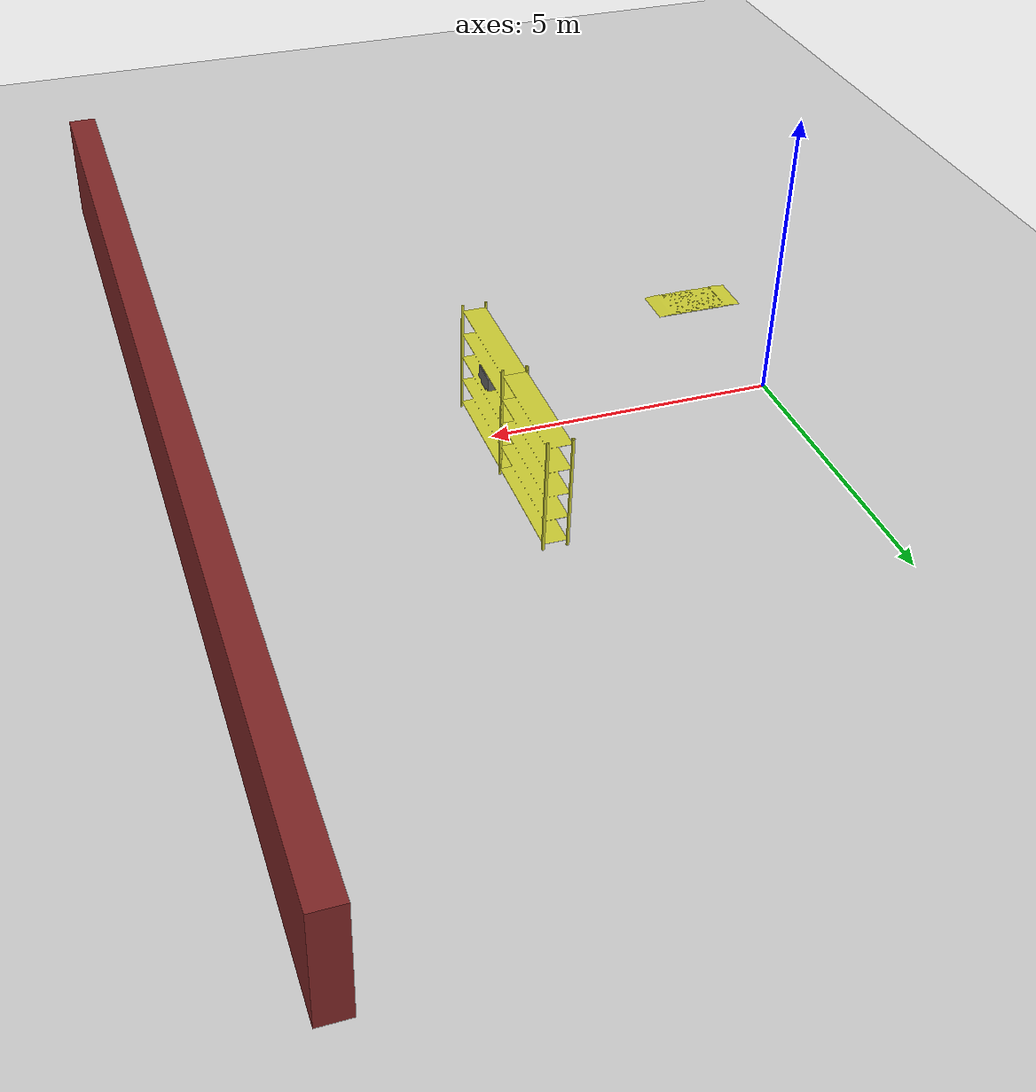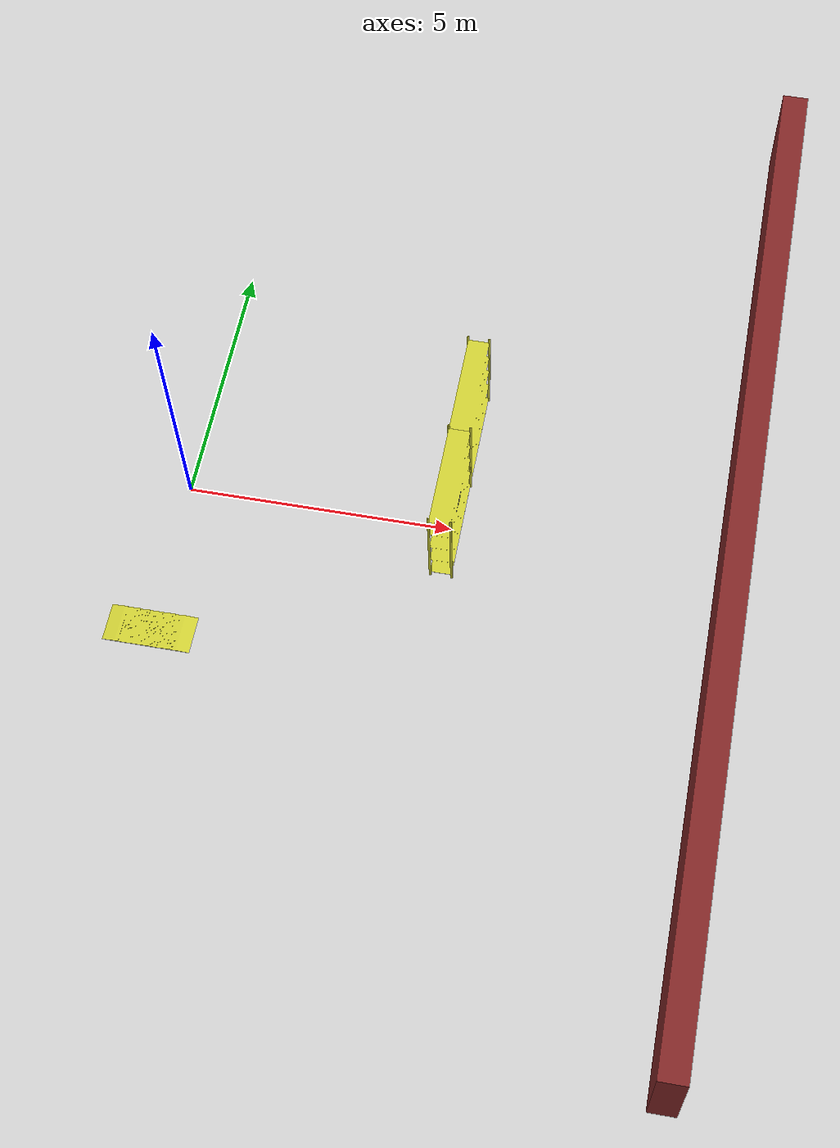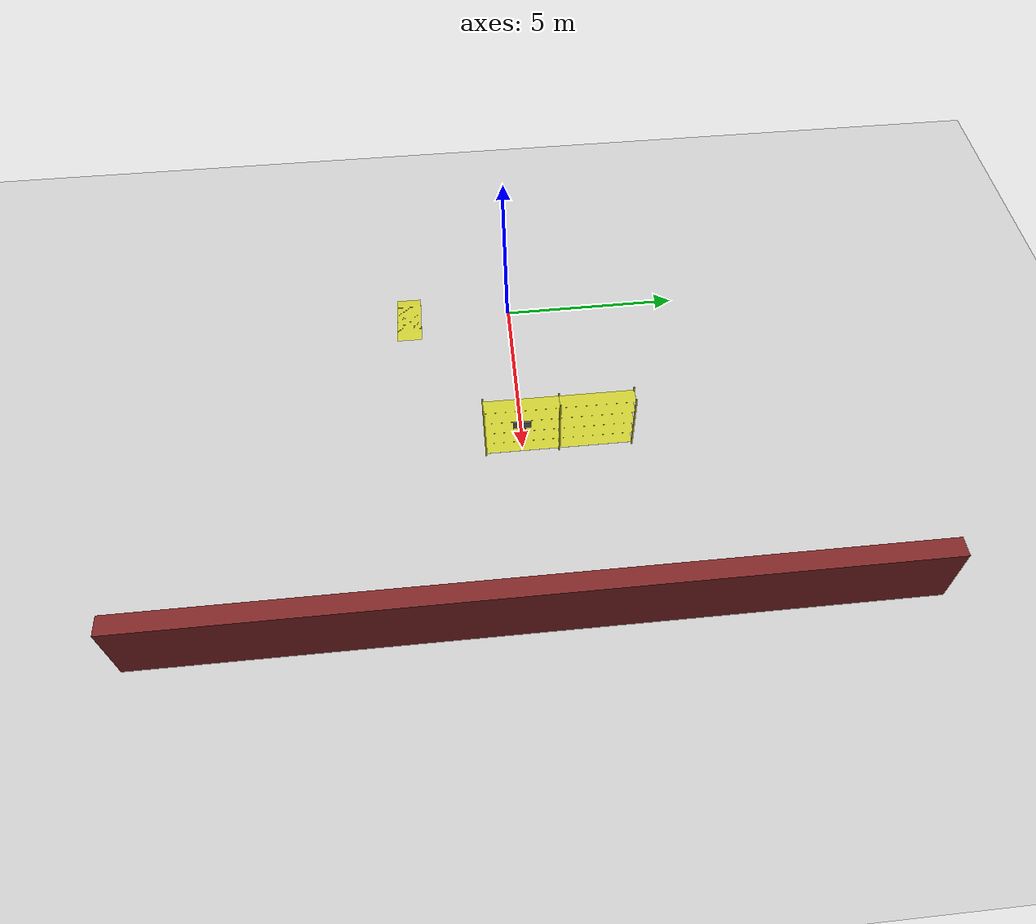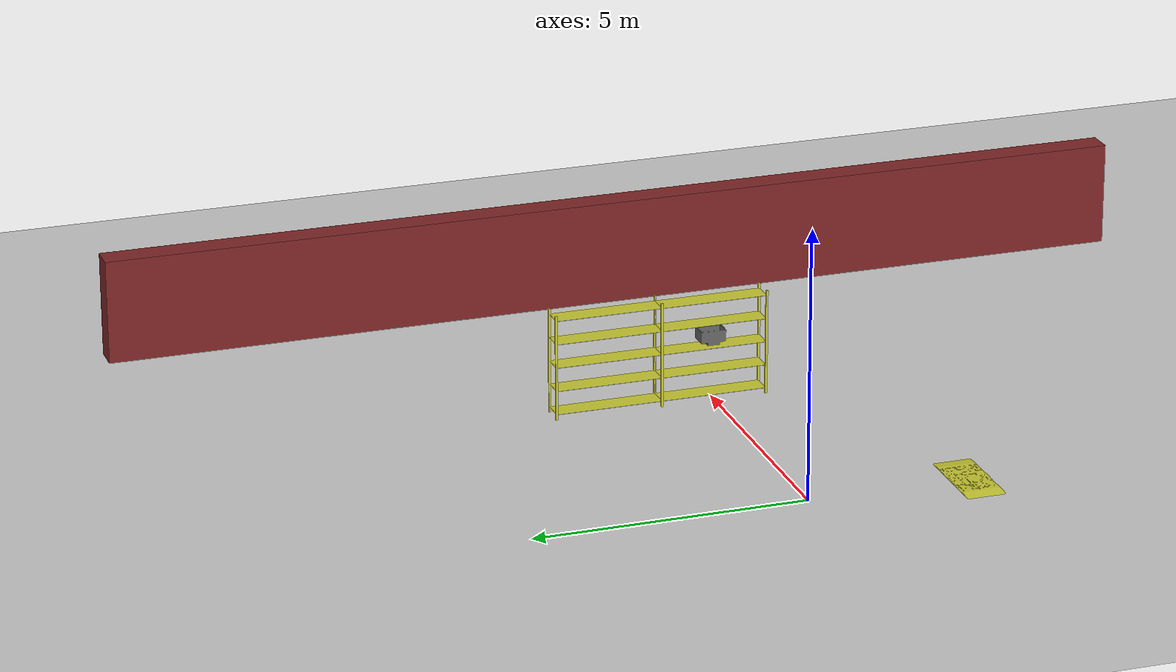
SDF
<?xml version="1.0" ?>
<sdf version="1.8">
  <world name="simple_arena">
    <!-- EMPTY.SDF -->
    <physics name="" type="ignored">
      <max_step_size>0.002</max_step_size>
      <real_time_factor>1.0</real_time_factor>
    </physics>
    <plugin
      filename="gz-sim-physics-system"
      name="gz::sim::systems::Physics">
    </plugin>
    <plugin
      filename="gz-sim-user-commands-system"
      name="gz::sim::systems::UserCommands">
    </plugin>
    <plugin
      filename="gz-sim-scene-broadcaster-system"
      name="gz::sim::systems::SceneBroadcaster">
    </plugin>
    <plugin
      filename="gz-sim-contact-system"
      name="gz::sim::systems::Contact">
    </plugin>

    <light type="directional" name="sun">
      <cast_shadows>true</cast_shadows>
      <pose>0 0 10 0 0 0</pose>
      <diffuse>0.8 0.8 0.8 1</diffuse>
      <specular>0.2 0.2 0.2 1</specular>
      <attenuation>
        <range>1000</range>
        <constant>0.9</constant>
        <linear>0.01</linear>
        <quadratic>0.001</quadratic>
      </attenuation>
      <direction>-0.5 0.1 -0.9</direction>
    </light>

    <model name="ground_plane">
      <static>true</static>
      <link name="link">
        <collision name="collision">
          <geometry>
            <plane>
              <normal>0 0 1</normal>
              <size>100 100</size>
            </plane>
          </geometry>
        </collision>
        <visual name="visual">
          <geometry>
            <plane>
              <normal>0 0 1</normal>
              <size>100 100</size>
            </plane>
          </geometry>
          <material>
            <ambient>0.8 0.8 0.8 1</ambient>
            <diffuse>0.8 0.8 0.8 1</diffuse>
            <specular>0.8 0.8 0.8 1</specular>
          </material>
        </visual>
      </link>
    </model>
    <!-- END EMPTY.SDF -->

    <!-- A wall -->
    <model name="far_wall">
      <static>true</static>
      <link name="wall">
        <pose>10.25 0 1 0 0 0</pose>
        <visual name="visual">
          <geometry>
            <box>
              <size>0.5 20.0 2.0</size>
            </box>
          </geometry>
          <material>
            <ambient>0.5 0.15 0.15 1</ambient>
            <diffuse>0.5 0.15 0.15 1</diffuse>
          </material>
        </visual>
        <collision name="collision">
          <geometry>
            <box>
              <size>0.5 20.0 2.0</size>
            </box>
          </geometry>
        </collision>
      </link>
    </model>

    <!-- Add more objects here -->
    <include>
      <uri>package://transbot_gazebo/models/canasto/</uri>
      <pose>5 0 1.1 0 0 1.57</pose>
    </include>

    <!-- Add more objects here -->
    <include>
      <uri>package://transbot_gazebo/models/estanteria</uri>
      <pose>5 0 0 0 0 0</pose>
    </include>
    <include>
      <uri>package://transbot_gazebo/models/estanteria</uri>
      <name>estanteria2</name>
      <pose>5 2 0 0 0 0</pose>
    </include>

    <include>
      <uri>package://transbot_gazebo/models/floor</uri>
      <pose>0 -3 0.0 0 0 3.1415</pose>
    </include>
  </world>
</sdf>

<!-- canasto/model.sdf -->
<sdf version="1.8">
  <model name="canasto">
    <pose>0 0 0 0 0 0</pose>

    <link name="canasto">
      <visual name="visual">
        <geometry>
            <mesh>
              <uri>meshes/canasto.stl</uri>
              <scale>1e-3 1e-3 1e-3</scale>
            </mesh>
        </geometry>
        <!-- Opcional: aplicar material -->
        <material>
          <diffuse>0.4 0.4 0.4 1.0</diffuse>
        </material>
      </visual>

      <collision name="collision">
        <geometry>
            <mesh>
              <uri>meshes/canasto.stl</uri>
              <scale>1e-3 1e-3 1e-3</scale>
            </mesh>
        </geometry>
      </collision>

      <inertial>
        <mass>30.0</mass>
        <inertia>
          <ixx>0.1</ixx>
          <ixy>0.0</ixy>
          <ixz>0.0</ixz>
          <iyy>0.1</iyy>
          <iyz>0.0</iyz>
          <izz>0.1</izz>
        </inertia>
      </inertial>
    </link>

    <!-- Más links (brazos, ruedas, etc.) -->
    <link name="roller1">
      <pose>0 0.16 -0.035 0 -1.5708 0</pose>

      <collision name="collision">
        <geometry>
            <cylinder>
              <radius>0.02</radius>
              <length>0.200</length>
            </cylinder>
        </geometry>
      </collision>

      <inertial>
        <mass>1.0</mass>
        <inertia>
          <ixx>0.1</ixx>
          <ixy>0.0</ixy>
          <ixz>0.0</ixz>
          <iyy>0.1</iyy>
          <iyz>0.0</iyz>
          <izz>0.1</izz>
        </inertia>
      </inertial>
    </link>

    <joint name="j_roller1" type="continuous">
      <pose>0.0 0.0 0.0 0.0 0.0 0.0</pose>
      <parent>canasto</parent>
      <child>roller1</child>
      <axis>
        <xyz>1.0 0.0 0.0</xyz>
      </axis>
    </joint>

    <link name="roller2">
      <pose>0 -0.16 -0.035 0 -1.5708 0</pose>

      <collision name="collision">
        <geometry>
            <cylinder>
              <radius>0.02</radius>
              <length>0.200</length>
            </cylinder>
        </geometry>
      </collision>

      <inertial>
        <mass>1.0</mass>
        <inertia>
          <ixx>0.1</ixx>
          <ixy>0.0</ixy>
          <ixz>0.0</ixz>
          <iyy>0.1</iyy>
          <iyz>0.0</iyz>
          <izz>0.1</izz>
        </inertia>
      </inertial>
    </link>

    <joint name="j_roller2" type="continuous">
      <pose>0.0 0.0 0 0.0 0.0 0.0</pose>
      <parent>canasto</parent>
      <child>roller2</child>
      <axis>
        <xyz>1.0 0.0 0.0</xyz>
      </axis>
    </joint>

  </model>
</sdf>

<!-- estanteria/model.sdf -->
<sdf version="1.8">
  <model name="estanteria">
    <static>true</static>
    <link name="estanteria">
      <visual name="visual">
        <geometry>
            <mesh>
              <uri>meshes/estanteria.stl</uri>
              <scale>1e-3 1e-3 1e-3</scale>
            </mesh>
        </geometry>
        <!-- Opcional: aplicar material -->
        <material>
          <diffuse>0.8 0.8 0.2 1.0</diffuse>
        </material>
      </visual>

      <collision name="collision">
        <geometry>
            <mesh>
              <uri>meshes/estanteria.stl</uri>
              <scale>1e-3 1e-3 1e-3</scale>
            </mesh>
        </geometry>
      </collision>

      <inertial>
        <mass>10.0</mass>
        <inertia>
          <ixx>0.1</ixx>
          <ixy>0.0</ixy>
          <ixz>0.0</ixz>
          <iyy>0.1</iyy>
          <iyz>0.0</iyz>
          <izz>0.1</izz>
        </inertia>
      </inertial>
    </link>

    <!-- Más links (brazos, ruedas, etc.) -->

  </model>
</sdf>

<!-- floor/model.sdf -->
<sdf version="1.8">
  <model name="irregular_floor">
    <static>true</static>
    <link name="floor">
      <visual name="visual">
        <geometry>
            <mesh>
              <uri>meshes/IrregularFloor.stl</uri>
              <scale>1e-3 1e-3 1e-3</scale>
            </mesh>
        </geometry>
        <!-- Opcional: aplicar material -->
        <material>
          <diffuse>0.8 0.8 0.2 1.0</diffuse>
        </material>
      </visual>

      <collision name="collision">
        <geometry>
            <mesh>
              <uri>meshes/IrregularFloor.stl</uri>
              <scale>1e-3 1e-3 1e-3</scale>
            </mesh>
        </geometry>
      </collision>

      <inertial>
        <mass>10.0</mass>
        <inertia>
          <ixx>0.1</ixx>
          <ixy>0.0</ixy>
          <ixz>0.0</ixz>
          <iyy>0.1</iyy>
          <iyz>0.0</iyz>
          <izz>0.1</izz>
        </inertia>
      </inertial>
    </link>

    <!-- Más links (brazos, ruedas, etc.) -->

  </model>
</sdf>
